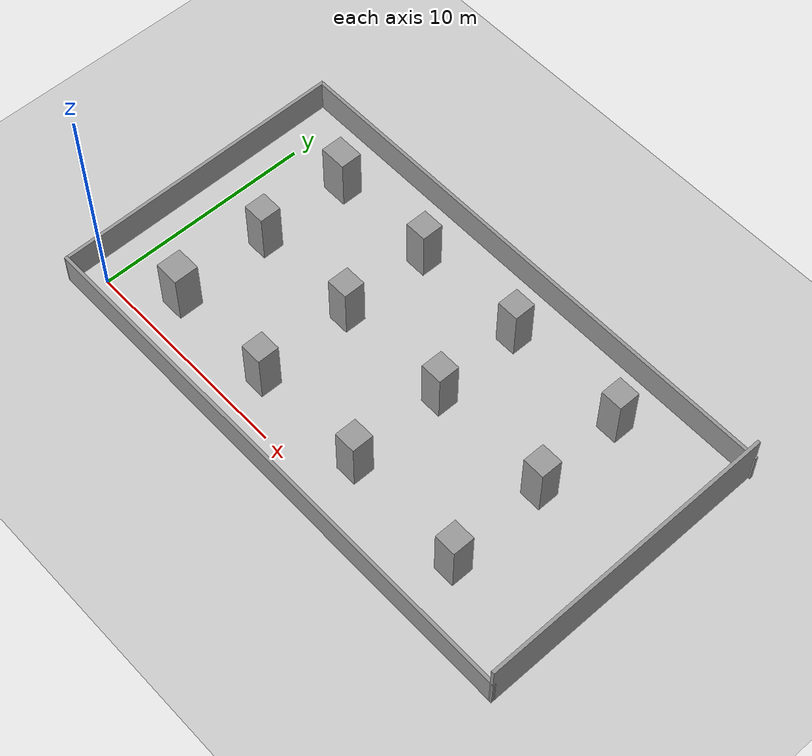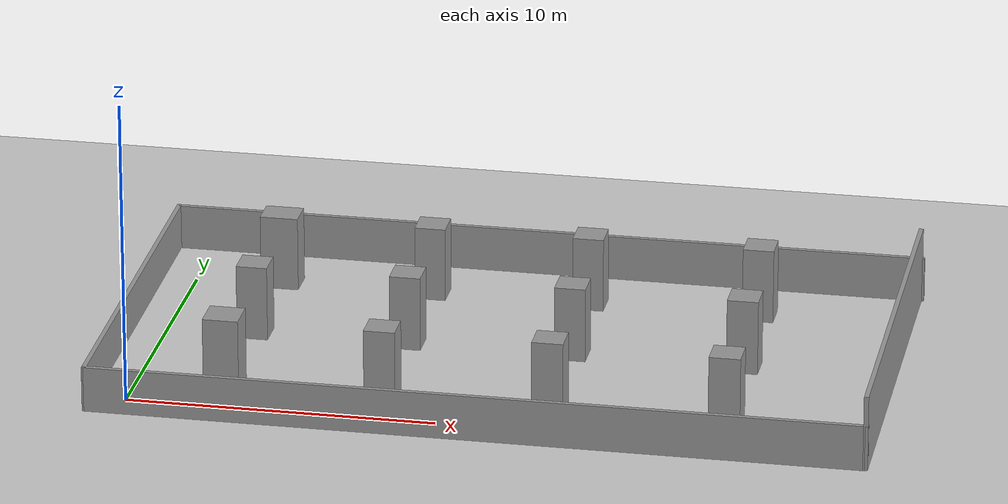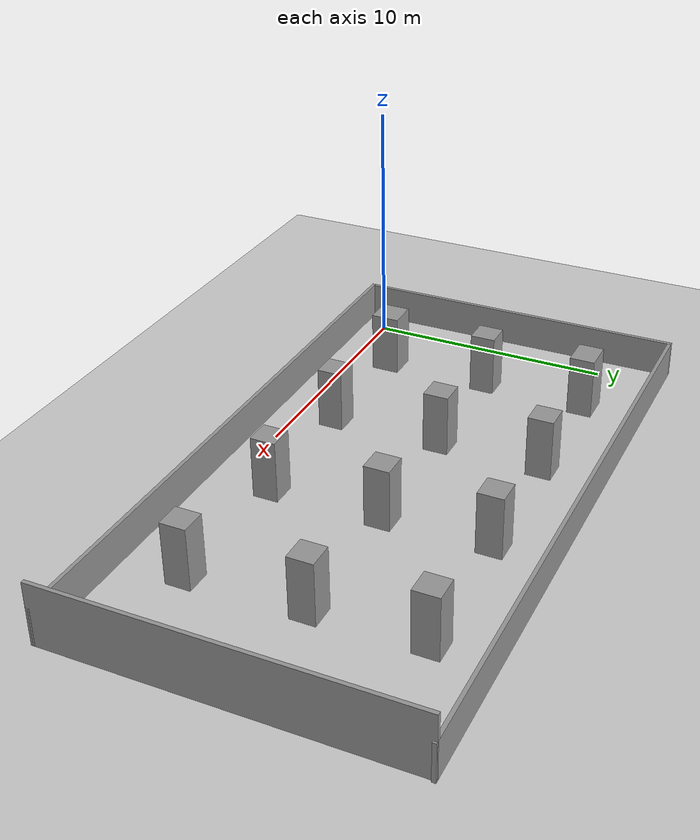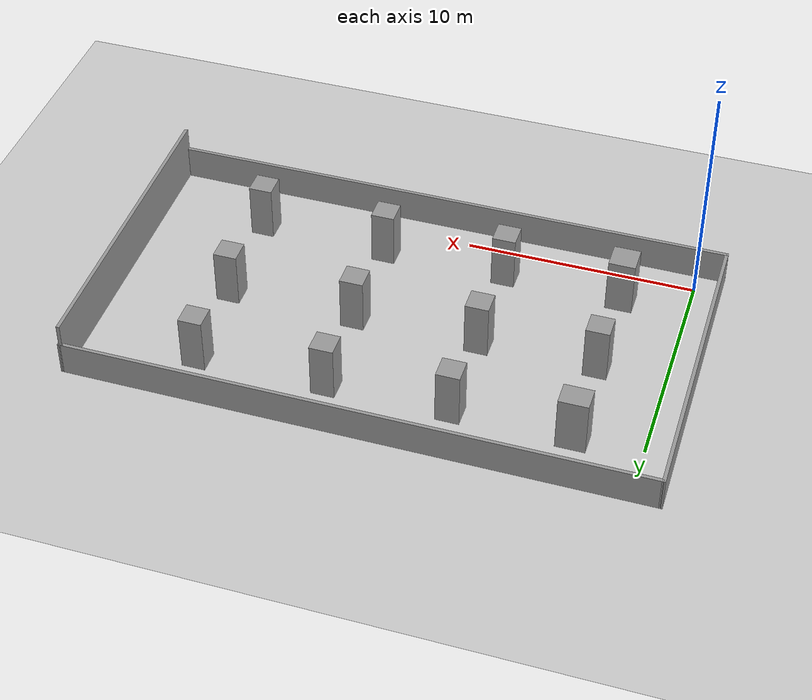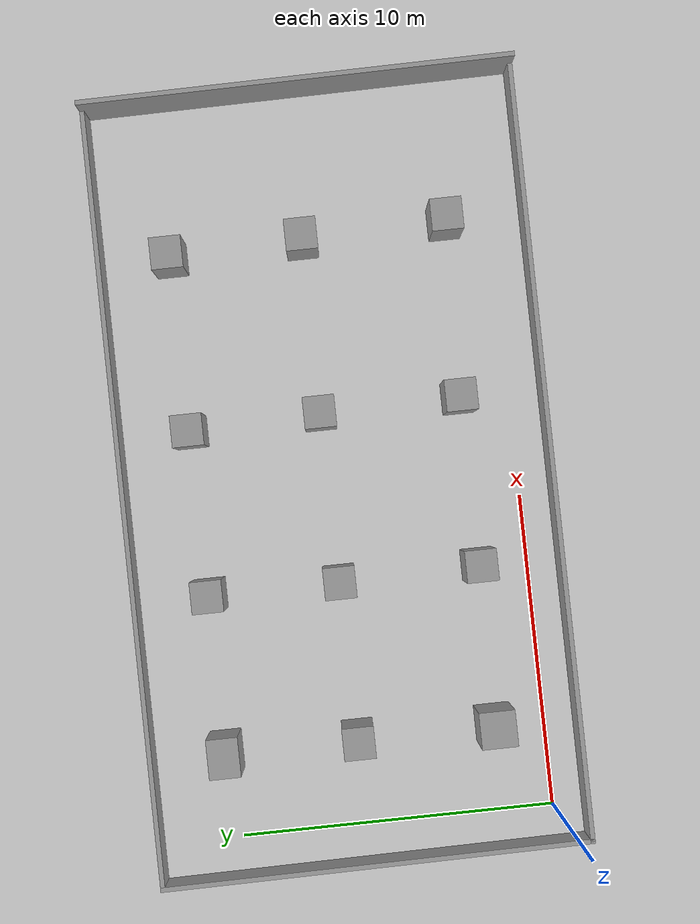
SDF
<sdf version="1.7">
 <world name="default">
  <light name="sun" type="directional">
   <pose>0 0 10 0 -0 0</pose>
   <diffuse>0.8 0.8 0.8 1</diffuse>
   <specular>0.2 0.2 0.2 1</specular>
   <attenuation>
    <range>1000</range>
    <constant>0.9</constant>
    <linear>0.01</linear>
    <quadratic>0.001</quadratic>
   </attenuation>
   <direction>-0.5 0.1 -0.9</direction>
   <spot><inner_angle>0</inner_angle><outer_angle>0</outer_angle><falloff>0</falloff></spot>
  </light>
  <model name="ground_plane">
   <static>1</static>
   <link name="link">
    <collision name="collision">
     <geometry><plane><normal>0 0 1</normal><size>100 100</size></plane></geometry>
     <surface>
      <contact><collide_bitmask>65535</collide_bitmask></contact>
      <friction><ode><mu>100</mu><mu2>50</mu2></ode></friction>
     </surface>
    </collision>
    <visual name="visual">
     <cast_shadows>0</cast_shadows>
     <geometry><plane><normal>0 0 1</normal><size>100 100</size></plane></geometry>
     <material>
      <script><uri>file://media/materials/scripts/gazebo.material</uri><name>Gazebo/Grey</name></script>
     </material>
    </visual>
   </link>
  </model>
  <gravity>0 0 -9.8</gravity>
  <magnetic_field>6e-06 2.3e-05 -4.2e-05</magnetic_field>
  <atmosphere type="adiabatic"/>
  <physics type="ode">
   <max_step_size>0.001</max_step_size>
   <real_time_factor>1</real_time_factor>
   <real_time_update_rate>1000</real_time_update_rate>
  </physics>
  <scene><ambient>0.4 0.4 0.4 1</ambient><background>0.7 0.7 0.7 1</background><shadows>1</shadows></scene>
  <spherical_coordinates>
   <surface_model>EARTH_WGS84</surface_model>
   <latitude_deg>0</latitude_deg>
   <longitude_deg>0</longitude_deg>
   <elevation>0</elevation>
   <heading_deg>0</heading_deg>
  </spherical_coordinates>
  <model name="largepole了">
   <pose>11.2907 5.8194 0 0 -0 0</pose>
   <link name="Wall_0">
    <collision name="Wall_0_Collision">
     <geometry><box><size>25 0.15 1.5</size></box></geometry>
     <pose>0 0 0.75 0 -0 0</pose>
    </collision>
    <visual name="Wall_0_Visual">
     <pose>0 0 0.75 0 -0 0</pose>
     <geometry><box><size>25 0.15 1.5</size></box></geometry>
     <material>
      <script><uri>file://media/materials/scripts/gazebo.material</uri><name>Gazebo/Grey</name></script>
      <ambient>1 1 1 1</ambient>
     </material>
     <meta><layer>0</layer></meta>
    </visual>
    <pose>0.049635 -6.83207 0 0 -0 0</pose>
   </link>
   <link name="Wall_12">
    <collision name="Wall_12_Collision">
     <geometry><box><size>1.01 1 2.5</size></box></geometry>
     <pose>0 0 1.25 0 -0 0</pose>
    </collision>
    <visual name="Wall_12_Visual">
     <pose>0 0 1.25 0 -0 0</pose>
     <geometry><box><size>1.01 1 2.5</size></box></geometry>
     <material>
      <script><uri>file://media/materials/scripts/gazebo.material</uri><name>Gazebo/Grey</name></script>
      <ambient>1 1 1 1</ambient>
     </material>
     <meta><layer>0</layer></meta>
    </visual>
    <pose>-8.41693 0.190043 0 0 -0 0</pose>
   </link>
   <link name="Wall_14">
    <collision name="Wall_14_Collision">
     <geometry><box><size>1.25 1 2.5</size></box></geometry>
     <pose>0 0 1.25 0 -0 0</pose>
    </collision>
    <visual name="Wall_14_Visual">
     <pose>0 0 1.25 0 -0 0</pose>
     <geometry><box><size>1.25 1 2.5</size></box></geometry>
     <material>
      <script><uri>file://media/materials/scripts/gazebo.material</uri><name>Gazebo/Grey</name></script>
      <ambient>1 1 1 1</ambient>
     </material>
     <meta><layer>0</layer></meta>
    </visual>
    <pose>-8.43917 4.43543 0 0 -0 0</pose>
   </link>
   <link name="Wall_16">
    <collision name="Wall_16_Collision">
     <geometry><box><size>1.01 1 2.5</size></box></geometry>
     <pose>0 0 1.25 0 -0 0</pose>
    </collision>
    <visual name="Wall_16_Visual">
     <pose>0 0 1.25 0 -0 0</pose>
     <geometry><box><size>1.01 1 2.5</size></box></geometry>
     <material>
      <script><uri>file://media/materials/scripts/gazebo.material</uri><name>Gazebo/Grey</name></script>
      <ambient>1 1 1 1</ambient>
     </material>
     <meta><layer>0</layer></meta>
    </visual>
    <pose>-3.3229 -4.1969 0 0 -0 0</pose>
   </link>
   <link name="Wall_18">
    <collision name="Wall_18_Collision">
     <geometry><box><size>1.01 1 2.5</size></box></geometry>
     <pose>0 0 1.25 0 -0 0</pose>
    </collision>
    <visual name="Wall_18_Visual">
     <pose>0 0 1.25 0 -0 0</pose>
     <geometry><box><size>1.01 1 2.5</size></box></geometry>
     <material>
      <script><uri>file://media/materials/scripts/gazebo.material</uri><name>Gazebo/Grey</name></script>
      <ambient>1 1 1 1</ambient>
     </material>
     <meta><layer>0</layer></meta>
    </visual>
    <pose>-3.39387 0.261156 0 0 -0 0</pose>
   </link>
   <link name="Wall_2">
    <collision name="Wall_2_Collision">
     <geometry><box><size>13.8142 0.15 1.5</size></box></geometry>
     <pose>0 0 0.75 0 -0 0</pose>
    </collision>
    <visual name="Wall_2_Visual">
     <pose>0 0 0.75 0 -0 0</pose>
     <geometry><box><size>13.8142 0.15 1.5</size></box></geometry>
     <material>
      <script><uri>file://media/materials/scripts/gazebo.material</uri><name>Gazebo/Grey</name></script>
      <ambient>1 1 1 1</ambient>
     </material>
     <meta><layer>0</layer></meta>
    </visual>
    <pose>-12.425 0 0 0 -0 1.57806</pose>
   </link>
   <link name="Wall_20">
    <collision name="Wall_20_Collision">
     <geometry><box><size>1.01 1 2.5</size></box></geometry>
     <pose>0 0 1.25 0 -0 0</pose>
    </collision>
    <visual name="Wall_20_Visual">
     <pose>0 0 1.25 0 -0 0</pose>
     <geometry><box><size>1.01 1 2.5</size></box></geometry>
     <material>
      <script><uri>file://media/materials/scripts/gazebo.material</uri><name>Gazebo/Grey</name></script>
      <ambient>1 1 1 1</ambient>
     </material>
     <meta><layer>0</layer></meta>
    </visual>
    <pose>-3.39309 4.43591 0 0 -0 0</pose>
   </link>
   <link name="Wall_22">
    <collision name="Wall_22_Collision">
     <geometry><box><size>1.01 1 2.5</size></box></geometry>
     <pose>0 0 1.25 0 -0 0</pose>
    </collision>
    <visual name="Wall_22_Visual">
     <pose>0 0 1.25 0 -0 0</pose>
     <geometry><box><size>1.01 1 2.5</size></box></geometry>
     <material>
      <script><uri>file://media/materials/scripts/gazebo.material</uri><name>Gazebo/Grey</name></script>
      <ambient>1 1 1 1</ambient>
     </material>
     <meta><layer>0</layer></meta>
    </visual>
    <pose>2.05515 -4.12612 0 0 -0 0</pose>
   </link>
   <link name="Wall_24">
    <collision name="Wall_24_Collision">
     <geometry><box><size>1.01 1 2.5</size></box></geometry>
     <pose>0 0 1.25 0 -0 0</pose>
    </collision>
    <visual name="Wall_24_Visual">
     <pose>0 0 1.25 0 -0 0</pose>
     <geometry><box><size>1.01 1 2.5</size></box></geometry>
     <material>
      <script><uri>file://media/materials/scripts/gazebo.material</uri><name>Gazebo/Grey</name></script>
      <ambient>1 1 1 1</ambient>
     </material>
     <meta><layer>0</layer></meta>
    </visual>
    <pose>1.98372 0.331642 0 0 -0 0</pose>
   </link>
   <link name="Wall_26">
    <collision name="Wall_26_Collision">
     <geometry><box><size>1.01 1 2.5</size></box></geometry>
     <pose>0 0 1.25 0 -0 0</pose>
    </collision>
    <visual name="Wall_26_Visual">
     <pose>0 0 1.25 0 -0 0</pose>
     <geometry><box><size>1.01 1 2.5</size></box></geometry>
     <material>
      <script><uri>file://media/materials/scripts/gazebo.material</uri><name>Gazebo/Grey</name></script>
      <ambient>1 1 1 1</ambient>
     </material>
     <meta><layer>0</layer></meta>
    </visual>
    <pose>1.84227 4.5064 0 0 -0 0</pose>
   </link>
   <link name="Wall_28">
    <collision name="Wall_28_Collision">
     <geometry><box><size>1.01 1 2.5</size></box></geometry>
     <pose>0 0 1.25 0 -0 0</pose>
    </collision>
    <visual name="Wall_28_Visual">
     <pose>0 0 1.25 0 -0 0</pose>
     <geometry><box><size>1.01 1 2.5</size></box></geometry>
     <material>
      <script><uri>file://media/materials/scripts/gazebo.material</uri><name>Gazebo/Grey</name></script>
      <ambient>1 1 1 1</ambient>
     </material>
     <meta><layer>0</layer></meta>
    </visual>
    <pose>7.71507 -4.2676 0 0 -0 0</pose>
   </link>
   <link name="Wall_30">
    <collision name="Wall_30_Collision">
     <geometry><box><size>1.01 1 2.5</size></box></geometry>
     <pose>0 0 1.25 0 -0 0</pose>
    </collision>
    <visual name="Wall_30_Visual">
     <pose>0 0 1.25 0 -0 0</pose>
     <geometry><box><size>1.01 1 2.5</size></box></geometry>
     <material>
      <script><uri>file://media/materials/scripts/gazebo.material</uri><name>Gazebo/Grey</name></script>
      <ambient>1 1 1 1</ambient>
     </material>
     <meta><layer>0</layer></meta>
    </visual>
    <pose>7.57383 0.331399 0 0 -0 0</pose>
   </link>
   <link name="Wall_32">
    <collision name="Wall_32_Collision">
     <geometry><box><size>1.01 1 2.5</size></box></geometry>
     <pose>0 0 1.25 0 -0 0</pose>
    </collision>
    <visual name="Wall_32_Visual">
     <pose>0 0 1.25 0 -0 0</pose>
     <geometry><box><size>1.01 1 2.5</size></box></geometry>
     <material>
      <script><uri>file://media/materials/scripts/gazebo.material</uri><name>Gazebo/Grey</name></script>
      <ambient>1 1 1 1</ambient>
     </material>
     <meta><layer>0</layer></meta>
    </visual>
    <pose>7.43237 4.5774 0 0 -0 0</pose>
   </link>
   <link name="Wall_5">
    <collision name="Wall_5_Collision">
     <geometry><box><size>25 0.15 1.5</size></box></geometry>
     <pose>0 0 0.75 0 -0 0</pose>
    </collision>
    <visual name="Wall_5_Visual">
     <pose>0 0 0.75 0 -0 0</pose>
     <geometry><box><size>25 0.15 1.5</size></box></geometry>
     <material>
      <script><uri>file://media/materials/scripts/gazebo.material</uri><name>Gazebo/Grey</name></script>
      <ambient>1 1 1 1</ambient>
     </material>
     <meta><layer>0</layer></meta>
    </visual>
    <pose>0.021122 6.83207 0 0 -0 0</pose>
   </link>
   <link name="Wall_7">
    <collision name="Wall_7_Collision">
     <geometry><box><size>13.8142 0.15 2.5</size></box></geometry>
     <pose>0 0 1.25 0 -0 0</pose>
    </collision>
    <visual name="Wall_7_Visual">
     <pose>0 0 1.25 0 -0 0</pose>
     <geometry><box><size>13.8142 0.15 2.5</size></box></geometry>
     <material>
      <script><uri>file://media/materials/scripts/gazebo.material</uri><name>Gazebo/Grey</name></script>
      <ambient>1 1 1 1</ambient>
     </material>
     <meta><layer>0</layer></meta>
    </visual>
    <pose>12.425 0 0 0 -0 -1.56353</pose>
   </link>
   <link name="Wall_9">
    <collision name="Wall_9_Collision">
     <geometry><box><size>1.15 1.14 2.5</size></box></geometry>
     <pose>0 0 1.25 0 -0 0</pose>
    </collision>
    <visual name="Wall_9_Visual">
     <pose>0 0 1.25 0 -0 0</pose>
     <geometry><box><size>1.15 1.14 2.5</size></box></geometry>
     <material>
      <script><uri>file://media/materials/scripts/gazebo.material</uri><name>Gazebo/Grey</name></script>
      <ambient>1 1 1 1</ambient>
     </material>
     <meta><layer>0</layer></meta>
    </visual>
    <pose>-8.44687 -4.17436 0 0 -0 0</pose>
   </link>
   <static>1</static>
  </model>
 </world>
</sdf>
